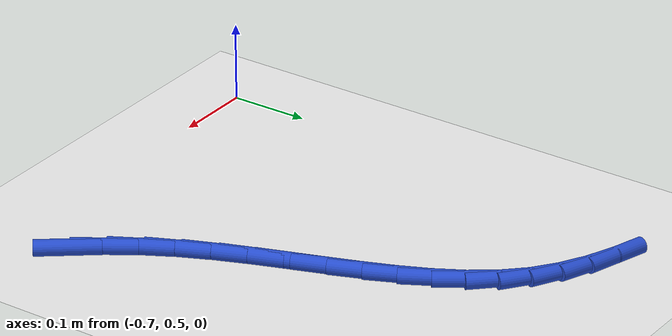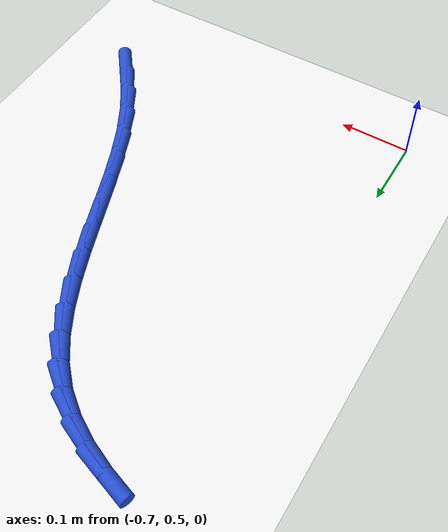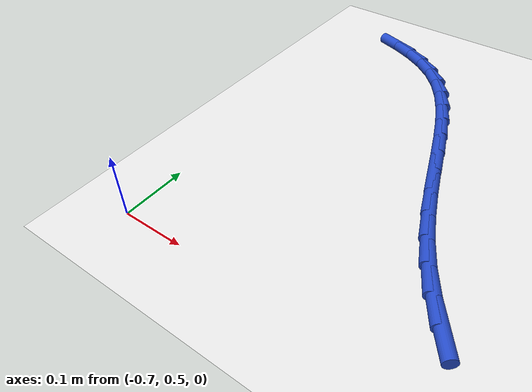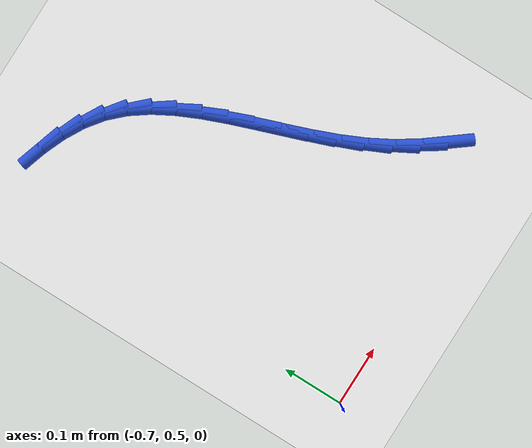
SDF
<sdf version="1.6">
 <world name="default">
  <model name="ground_plane">
   <static>1</static>
   <link name="link">
    <collision name="collision">
     <geometry><plane><normal>0 0 1</normal><size>100 100</size></plane></geometry>
     <surface><friction><ode><mu>100</mu><mu2>50</mu2></ode></friction></surface>
    </collision>
    <visual name="visual">
     <cast_shadows>0</cast_shadows>
     <geometry><plane><normal>0 0 1</normal><size>100 100</size></plane></geometry>
     <material>
      <script><uri>file://media/materials/scripts/gazebo.material</uri><name>Gazebo/WhiteGlow</name></script>
     </material>
    </visual>
   </link>
  </model>
  <model name="line">
   <link name="link_16">
    <pose>-0.2670469911401927 0.574406161469807 0.01 0 1.57 -0.9118125329983564</pose>
    <collision name="collision">
     <geometry><cylinder><radius>0.01</radius><length>0.08</length></cylinder></geometry>
    </collision>
    <visual name="visual">
     <material>
      <script><name>Gazebo/Blue</name><uri>file://media/materials/scripts/gazebo.material</uri></script>
     </material>
     <geometry><cylinder><radius>0.01</radius><length>0.08</length></cylinder></geometry>
    </visual>
   </link>
   <link name="link_17">
    <pose>-0.2929350955167416 0.6078326862939695 0.01 0 1.57 -0.9813154814949131</pose>
    <collision name="collision">
     <geometry><cylinder><radius>0.01</radius><length>0.08</length></cylinder></geometry>
    </collision>
    <visual name="visual">
     <material>
      <script><name>Gazebo/Blue</name><uri>file://media/materials/scripts/gazebo.material</uri></script>
     </material>
     <geometry><cylinder><radius>0.01</radius><length>0.08</length></cylinder></geometry>
    </visual>
   </link>
   <link name="link_18">
    <pose>-0.3165488302612288 0.6431400921972549 0.01 0 1.57 -1.0648535036615285</pose>
    <collision name="collision">
     <geometry><cylinder><radius>0.01</radius><length>0.08</length></cylinder></geometry>
    </collision>
    <visual name="visual">
     <material>
      <script><name>Gazebo/Blue</name><uri>file://media/materials/scripts/gazebo.material</uri></script>
     </material>
     <geometry><cylinder><radius>0.01</radius><length>0.08</length></cylinder></geometry>
    </visual>
   </link>
   <link name="link_19">
    <pose>-0.33734193857479833 0.6806697876710137 0.01 0 1.57 -1.1371374138150026</pose>
    <collision name="collision">
     <geometry><cylinder><radius>0.01</radius><length>0.08</length></cylinder></geometry>
    </collision>
    <visual name="visual">
     <material>
      <script><name>Gazebo/Blue</name><uri>file://media/materials/scripts/gazebo.material</uri></script>
     </material>
     <geometry><cylinder><radius>0.01</radius><length>0.08</length></cylinder></geometry>
    </visual>
   </link>
   <link name="link_20">
    <pose>-0.35558926507172944 0.7200760094710266 0.01 0 1.57 -1.1878325797074916</pose>
    <collision name="collision">
     <geometry><cylinder><radius>0.01</radius><length>0.08</length></cylinder></geometry>
    </collision>
    <visual name="visual">
     <material>
      <script><name>Gazebo/Blue</name><uri>file://media/materials/scripts/gazebo.material</uri></script>
     </material>
     <geometry><cylinder><radius>0.01</radius><length>0.08</length></cylinder></geometry>
    </visual>
   </link>
   <link name="link_21">
    <pose>-0.37195096259407945 0.760690533668711 0.01 0 1.57 -1.2183001767137382</pose>
    <collision name="collision">
     <geometry><cylinder><radius>0.01</radius><length>0.08</length></cylinder></geometry>
    </collision>
    <visual name="visual">
     <material>
      <script><name>Gazebo/Blue</name><uri>file://media/materials/scripts/gazebo.material</uri></script>
     </material>
     <geometry><cylinder><radius>0.01</radius><length>0.08</length></cylinder></geometry>
    </visual>
   </link>
   <link name="link_22">
    <pose>-0.3870894042844929 0.8018432781876569 0.01 0 1.57 -1.2293462711053924</pose>
    <collision name="collision">
     <geometry><cylinder><radius>0.01</radius><length>0.08</length></cylinder></geometry>
    </collision>
    <visual name="visual">
     <material>
      <script><name>Gazebo/Blue</name><uri>file://media/materials/scripts/gazebo.material</uri></script>
     </material>
     <geometry><cylinder><radius>0.01</radius><length>0.08</length></cylinder></geometry>
    </visual>
   </link>
   <link name="link_23">
    <pose>-0.4016669632856135 0.8428641609514534 0.01 0 1.57 -1.2208404121530485</pose>
    <collision name="collision">
     <geometry><cylinder><radius>0.01</radius><length>0.08</length></cylinder></geometry>
    </collision>
    <visual name="visual">
     <material>
      <script><name>Gazebo/Blue</name><uri>file://media/materials/scripts/gazebo.material</uri></script>
     </material>
     <geometry><cylinder><radius>0.01</radius><length>0.08</length></cylinder></geometry>
    </visual>
   </link>
   <link name="link_24">
    <pose>-0.4163460127400854 0.88308309988369 0.01 0 1.57 -1.1915332056967973</pose>
    <collision name="collision">
     <geometry><cylinder><radius>0.01</radius><length>0.08</length></cylinder></geometry>
    </collision>
    <visual name="visual">
     <material>
      <script><name>Gazebo/Blue</name><uri>file://media/materials/scripts/gazebo.material</uri></script>
     </material>
     <geometry><cylinder><radius>0.01</radius><length>0.08</length></cylinder></geometry>
    </visual>
   </link>
   <link name="link_25">
    <pose>-0.4317889257905527 0.9218300129079567 0.01 0 1.57 -1.1389601954534163</pose>
    <collision name="collision">
     <geometry><cylinder><radius>0.01</radius><length>0.08</length></cylinder></geometry>
    </collision>
    <visual name="visual">
     <material>
      <script><name>Gazebo/Blue</name><uri>file://media/materials/scripts/gazebo.material</uri></script>
     </material>
     <geometry><cylinder><radius>0.01</radius><length>0.08</length></cylinder></geometry>
    </visual>
   </link>
   <link name="link_26">
    <pose>-0.44865807557965953 0.9584348179478428 0.01 0 1.57 -1.0595447518045487</pose>
    <collision name="collision">
     <geometry><cylinder><radius>0.01</radius><length>0.08</length></cylinder></geometry>
    </collision>
    <visual name="visual">
     <material>
      <script><name>Gazebo/Blue</name><uri>file://media/materials/scripts/gazebo.material</uri></script>
     </material>
     <geometry><cylinder><radius>0.01</radius><length>0.08</length></cylinder></geometry>
    </visual>
   </link>
   <link name="link_27">
    <pose>-0.4676158352500499 0.9922274329269377 0.01 0 1.57 -0.9492700592249191</pose>
    <collision name="collision">
     <geometry><cylinder><radius>0.01</radius><length>0.08</length></cylinder></geometry>
    </collision>
    <visual name="visual">
     <material>
      <script><name>Gazebo/Blue</name><uri>file://media/materials/scripts/gazebo.material</uri></script>
     </material>
     <geometry><cylinder><radius>0.01</radius><length>0.08</length></cylinder></geometry>
    </visual>
   </link>
   <link name="link_28">
    <pose>-0.4893245779443679 1.0225377757688312 0.01 0 1.57 -0.8057340985343729</pose>
    <collision name="collision">
     <geometry><cylinder><radius>0.01</radius><length>0.08</length></cylinder></geometry>
    </collision>
    <visual name="visual">
     <material>
      <script><name>Gazebo/Blue</name><uri>file://media/materials/scripts/gazebo.material</uri></script>
     </material>
     <geometry><cylinder><radius>0.01</radius><length>0.08</length></cylinder></geometry>
    </visual>
   </link>
   <link name="link_29">
    <pose>-0.5144434227529491 1.048699604814113 0.01 0 1.57 -0.6466422261593727</pose>
    <collision name="collision">
     <geometry><cylinder><radius>0.01</radius><length>0.08</length></cylinder></geometry>
    </collision>
    <visual name="visual">
     <material>
      <script><name>Gazebo/Blue</name><uri>file://media/materials/scripts/gazebo.material</uri></script>
     </material>
     <geometry><cylinder><radius>0.01</radius><length>0.08</length></cylinder></geometry>
    </visual>
   </link>
   <link name="link_30">
    <pose>-0.5432761767328922 1.0704660159688784 0.01 0 1.57 -0.5079842084404306</pose>
    <collision name="collision">
     <geometry><cylinder><radius>0.01</radius><length>0.08</length></cylinder></geometry>
    </collision>
    <visual name="visual">
     <material>
      <script><name>Gazebo/Blue</name><uri>file://media/materials/scripts/gazebo.material</uri></script>
     </material>
     <geometry><cylinder><radius>0.01</radius><length>0.08</length></cylinder></geometry>
    </visual>
   </link>
   <link name="link_31">
    <pose>-0.5754563378831818 1.088381200689813 0.01 0 1.57 -0.3966448983229426</pose>
    <collision name="collision">
     <geometry><cylinder><radius>0.01</radius><length>0.08</length></cylinder></geometry>
    </collision>
    <visual name="visual">
     <material>
      <script><name>Gazebo/Blue</name><uri>file://media/materials/scripts/gazebo.material</uri></script>
     </material>
     <geometry><cylinder><radius>0.01</radius><length>0.08</length></cylinder></geometry>
    </visual>
   </link>
   <link name="link_32">
    <pose>-0.6105430778655511 1.10307707002202 0.01 0 1.57 -0.3119156909555713</pose>
    <collision name="collision">
     <geometry><cylinder><radius>0.01</radius><length>0.08</length></cylinder></geometry>
    </collision>
    <visual name="visual">
     <material>
      <script><name>Gazebo/Blue</name><uri>file://media/materials/scripts/gazebo.material</uri></script>
     </material>
     <geometry><cylinder><radius>0.01</radius><length>0.08</length></cylinder></geometry>
    </visual>
   </link>
  </model>
 </world>
</sdf>
